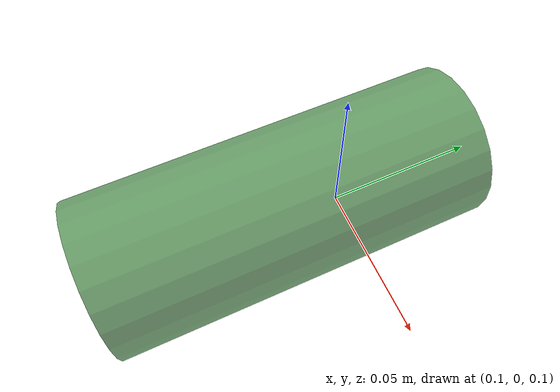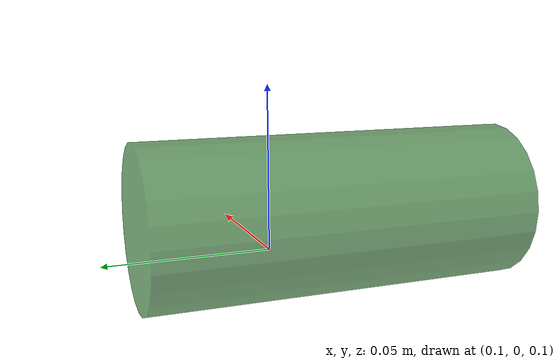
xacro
<?xml version="1.0"?>
<robot xmlns:xacro="http://www.ros.org/wiki/xacro" name="cylinder">
    <xacro:property name="PI" value="3.14159265359" />
    <xacro:property name="bodylength" value="0.12" />
    <xacro:property name="width" value="0.025" />
    <xacro:property name="opacity" value="0.7" />
    <xacro:property name="obj_x" value="0.1" />
    <xacro:property name="obj_y" value="-0.02" />
    <xacro:property name="obj_z" value="0.11" />
    <!-- Base link -->
    <link name="obj_base">
        <origin xyz="0 0 0"/>
    </link>
    <joint name="base_joint" type="revolute">
        <limit effort="15" lower="-0.47" upper="0.47" velocity="7"/>
        <parent link="obj_base"/>
        <child link="object_link"/>
        <origin xyz="0 0 0"/>
    </joint>
    <!-- object link -->
    <link name="object_link">
        <visual>
            <geometry>
                <cylinder length="${bodylength}" radius="${width}"/>
            </geometry>
            <origin rpy="${PI/2} 0 0" xyz="${obj_x} ${obj_y} ${obj_z}"/>
            <material name="green">
                <color rgba="0.2 0.5 0.2 ${opacity}"/>
            </material>
        </visual>
        <collision>
            <geometry>
                <cylinder radius="${width}" length="${bodylength}"/>
            </geometry>
        </collision>
    </link>
</robot>
